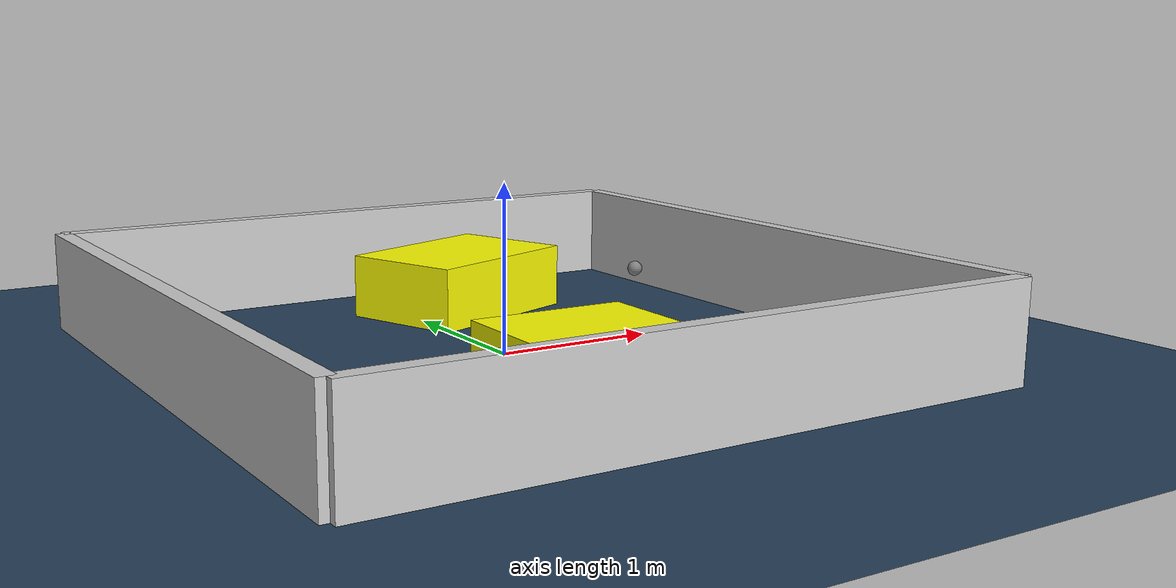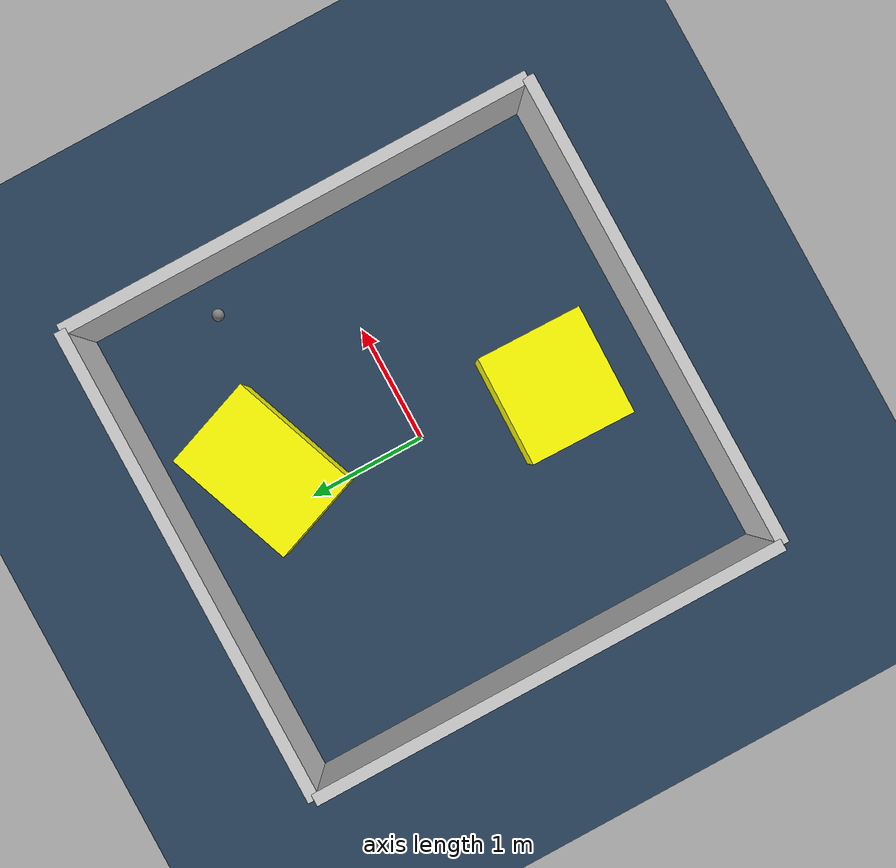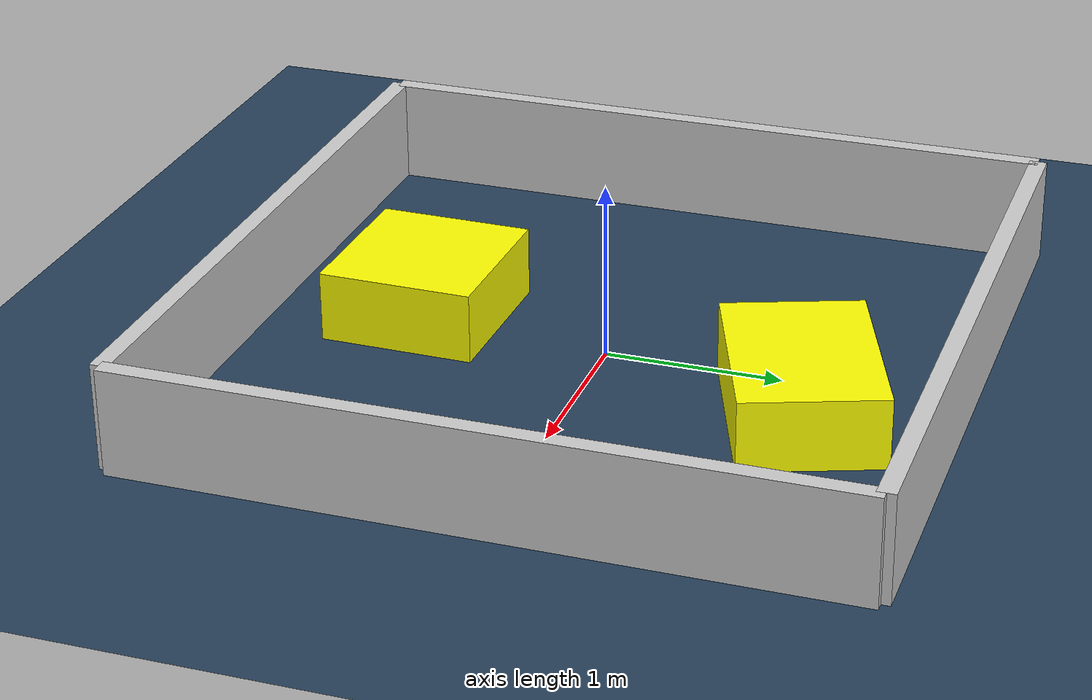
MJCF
<?xml version="1.0" ?>
<mujoco model="generated_environment">
  <option timestep="0.01" integrator="RK4" cone="elliptic"/>
  <default>
    <geom density="1"/>
  </default>
  <asset>
    <texture builtin="gradient" height="3072" rgb1="0.3 0.5 0.7" rgb2="0 0 0" type="skybox" width="512"/>
    <texture builtin="checker" height="300" mark="edge" markrgb="0.8 0.8 0.8" name="groundplane" rgb1="0.2 0.3 0.4" rgb2="0.1 0.2 0.3" type="2d" width="300"/>
    <material name="groundplane" reflectance="0.2" texrepeat="5 5" texture="groundplane" texuniform="true"/>
    <material name="robot" rgba="0.0 1.0 0.0 1"/>
  </asset>
  <worldbody>
    <light dir="0 0 -1" directional="true" pos="0 0 1.5"/>
    <geom condim="4" friction="1.0 0.005 0.001" material="groundplane" name="floor" size="0 0 0.05" type="plane"/>
    <body name="walls">
      <geom name="wall_1" condim="4" pos="-2.0 0.0 0.3" rgba="0.800000011920929 0.800000011920929 0.800000011920929 1.0" size="0.05 2.0 0.3" type="box"/>
      <geom name="wall_2" condim="4" pos="2.0 0.0 0.3" rgba="0.800000011920929 0.800000011920929 0.800000011920929 1.0" size="0.05 2.0 0.3" type="box"/>
      <geom name="wall_3" condim="4" pos="0.0 -2.0 0.3" rgba="0.800000011920929 0.800000011920929 0.800000011920929 1.0" size="2.0 0.05 0.3" type="box"/>
      <geom name="wall_4" condim="4" pos="0.0 2.0 0.3" rgba="0.800000011920929 0.800000011920929 0.800000011920929 1.0" size="2.0 0.05 0.3" type="box"/>
    </body>
    <body name="robot">
      <joint name="joint_x" type="slide" pos="0 0 0" axis="1 0 0"/>
      <joint name="joint_y" type="slide" pos="0 0 0" axis="0 1 0"/>
      <geom name="robot" type="sphere" pos="1.6266297951615045 0.9482551381809494 0.2" size="0.05" mass="5." friction="1.0 0.005 0.0001" condim="4"/>
      <site name="sensor_ball"/>
    </body>
    <body name="obstacle_1_movable">
      <geom name="obstacle_1_movable" condim="4" pos="0.36413332172572876 1.1988579625173892 0.2" euler="0 0 20.424809071786875" friction="1.0 0.005 0.001" rgba="1 1 0 1" size="0.5656371014921322 0.39627218814288934 0.2" type="box" mass="0.1"/>
      <joint type="free"/>
    </body>
    <body name="obstacle_2_movable">
      <geom name="obstacle_2_movable" condim="4" pos="-0.1435255113795051 -1.1074936768248387 0.2" euler="0 0 359.0393593784286" friction="1.0 0.005 0.001" rgba="1 1 0 1" size="0.4616249155065755 0.4411145565111395 0.2" type="box" mass="0.1"/>
      <joint type="free"/>
    </body>
  </worldbody>
  <actuator>
    <motor name="actuator_x" joint="joint_x" gear="1" ctrlrange="-1 1"/>
    <motor name="actuator_y" joint="joint_y" gear="1" ctrlrange="-1 1"/>
  </actuator>
</mujoco>
